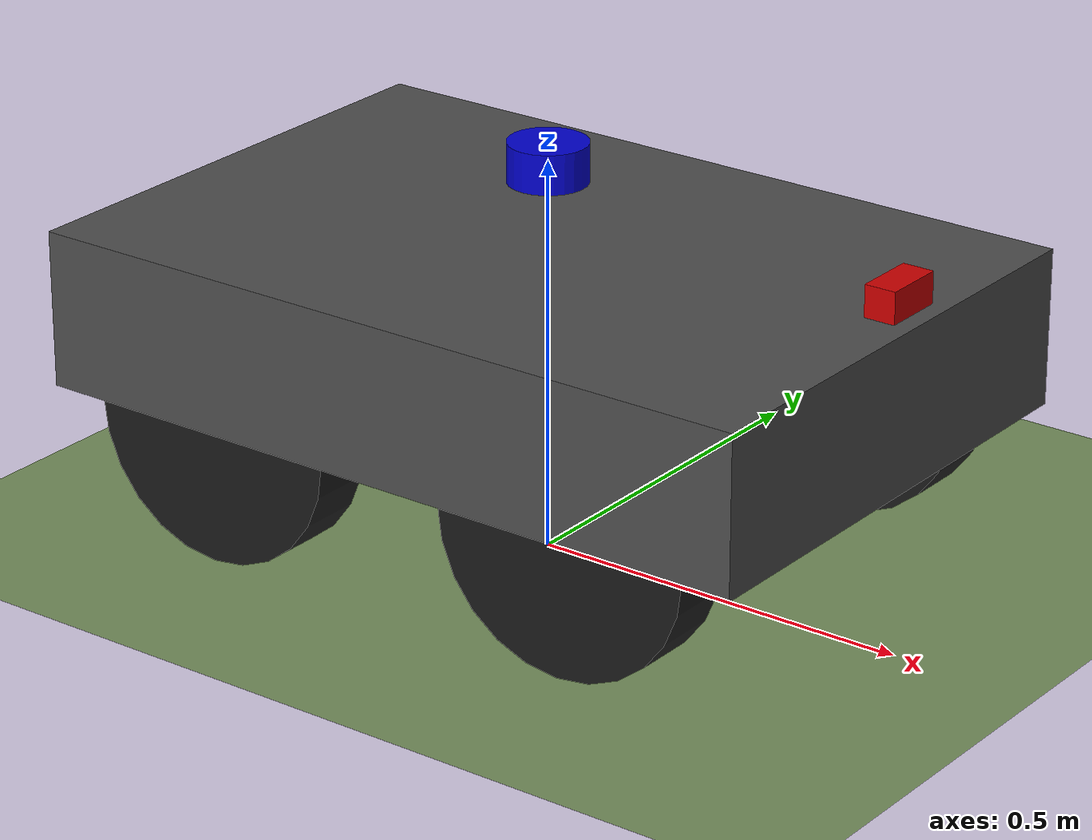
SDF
<?xml version="1.0"?>
<sdf version="1.9">
  <world name="phase1_region2_open">

    <!-- Physics engine — computes gravity, collisions, forces every timestep -->
    <plugin filename="gz-sim-physics-system"
            name="gz::sim::systems::Physics">
    </plugin>

    <!-- Lets you spawn/delete models from the GUI or command line -->
    <plugin filename="gz-sim-user-commands-system"
            name="gz::sim::systems::UserCommands">
    </plugin>

    <!-- Sends the 3D scene to the Gazebo GUI so you can see it -->
    <plugin filename="gz-sim-scene-broadcaster-system"
            name="gz::sim::systems::SceneBroadcaster">
    </plugin>

    <plugin filename="gz-sim-sensors-system"
            name="gz::sim::systems::Sensors">
      <render_engine>ogre2</render_engine>
    </plugin>

    <!--
      IMU system — required for IMU sensors to publish data.
      Separate from the Sensors plugin (which handles rendering sensors).
    -->
    <plugin filename="gz-sim-imu-system"
            name="gz::sim::systems::Imu">
    </plugin>

    <plugin filename="gz-sim-navsat-system"
            name="gz::sim::systems::NavSat">
    </plugin>

    <!-- Contact system — detects physical contacts between objects -->
    <plugin filename="gz-sim-contact-system"
            name="gz::sim::systems::Contact">
    </plugin>

    <!-- ══════════════════════════════════════════════════════════
         WORLD SETTINGS
         ══════════════════════════════════════════════════════════ -->

    <!-- Gravity: 9.8 m/s² downward (Earth standard) -->
    <gravity>0 0 -9.8</gravity>

    <!-- Magnetic field (for IMU magnetometer, approximate for Detroit MI) -->
    <magnetic_field>5.5645e-6 2.28758e-5 -4.23884e-5</magnetic_field>

    <spherical_coordinates>
      <surface_model>EARTH_WGS84</surface_model>
      <world_frame_orientation>ENU</world_frame_orientation>
      <latitude_deg>42.4129540624</latitude_deg>
      <longitude_deg>-83.1360653105</longitude_deg>
      <elevation>190.0</elevation>
      <heading_deg>0</heading_deg>
    </spherical_coordinates>

    <!-- Physics timestep: 1ms = 1000 Hz. Standard for ground robots. -->
    <physics name="1ms" type="ode">
      <max_step_size>0.001</max_step_size>
      <real_time_factor>1.0</real_time_factor>
      <dart>
        <collision_detector>bullet</collision_detector>
      </dart>
    </physics>

    <!-- ══════════════════════════════════════════════════════════
         SCENE — lighting and sky
         ══════════════════════════════════════════════════════════ -->
    <scene>
      <ambient>0.4 0.4 0.4 1</ambient>
      <background>0.7 0.85 1.0 1</background>  <!-- light blue sky -->
      <shadows>true</shadows>
    </scene>

    <!-- Sun: directional light from above-left, casts shadows -->
    <light type="directional" name="sun">
      <cast_shadows>true</cast_shadows>
      <pose>0 0 100 0 0 0</pose>
      <diffuse>0.9 0.9 0.9 1</diffuse>
      <specular>0.3 0.3 0.3 1</specular>
      <attenuation>
        <range>1000</range>
        <constant>0.9</constant>
        <linear>0.01</linear>
        <quadratic>0.001</quadratic>
      </attenuation>
      <direction>-0.5 0.1 -0.9</direction>
    </light>

    <model name="ground_plane">
      <static>true</static>
      <link name="link">
        <collision name="collision">
          <geometry>
            <plane>
              <normal>0 0 1</normal>  <!-- Z-up -->
              <size>200 200</size>
            </plane>
          </geometry>
          <surface>
            <friction>
              <ode><mu>1.0</mu><mu2>1.0</mu2></ode>
            </friction>
          </surface>
        </collision>

        <visual name="visual">
          <geometry>
            <plane>
              <normal>0 0 1</normal>
              <size>200 200</size>
            </plane>
          </geometry>
          <material>
            <ambient>0.45 0.55 0.35 1</ambient>
            <diffuse>0.45 0.55 0.35 1</diffuse>  <!-- olive green, like grass -->
          </material>
        </visual>
      </link>
    </model>

    <include>
      <uri>model://husky_leader</uri>
      <name>husky</name>
      <pose>0 0 0.3 0 0 0</pose>
    </include>

  </world>
</sdf>

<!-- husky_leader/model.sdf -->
<sdf version="1.9">
  <model name="husky_leader">

    <!--
      static = false means physics applies (gravity, collisions, forces).
      If true, the robot would float in place and ignore cmd_vel.
    -->
    <static>false</static>

    <link name="base_link">
      <inertial>
        <mass>50.0</mass>
        <inertia>
          <ixx>1.0417</ixx>
          <iyy>1.5042</iyy>
          <izz>2.1042</izz>
          <ixy>0</ixy>
          <ixz>0</ixz>
          <iyz>0</iyz>
        </inertia>
      </inertial>

      <!--
        Collision: the shape Gazebo uses to detect contacts.
        Simpler than visual — a box is fine for a rectangular robot.
      -->
      <collision name="chassis_collision">
        <geometry>
          <box><size>0.99 0.67 0.20</size></box>
        </geometry>
      </collision>

      <visual name="chassis_visual">
        <geometry>
          <box><size>0.99 0.67 0.20</size></box>
        </geometry>
        <material>
          <ambient>0.2 0.2 0.2 1</ambient>
          <diffuse>0.3 0.3 0.3 1</diffuse>  <!-- dark grey, like a real Husky -->
        </material>
      </visual>

      <sensor name="imu_sensor" type="imu">
        <always_on>true</always_on>
        <update_rate>100</update_rate>  <!-- 100 Hz, typical for IMU -->
        <topic>imu/data</topic>
        <imu>
          <angular_velocity>
            <x><noise type="gaussian"><mean>0</mean><stddev>0.001</stddev></noise></x>
            <y><noise type="gaussian"><mean>0</mean><stddev>0.001</stddev></noise></y>
            <z><noise type="gaussian"><mean>0</mean><stddev>0.001</stddev></noise></z>
          </angular_velocity>
          <linear_acceleration>
            <x><noise type="gaussian"><mean>0</mean><stddev>0.01</stddev></noise></x>
            <y><noise type="gaussian"><mean>0</mean><stddev>0.01</stddev></noise></y>
            <z><noise type="gaussian"><mean>0</mean><stddev>0.01</stddev></noise></z>
          </linear_acceleration>
        </imu>
      </sensor>

      <sensor name="navsat_sensor" type="navsat">
        <always_on>true</always_on>
        <update_rate>5</update_rate>  <!-- 5 Hz, typical for GPS modules -->
        <topic>navsat</topic>
        <navsat>
          <position_sensing>
            <horizontal>
              <!-- Noise here is applied directly to lat/lon (degrees), not meters.
                   0.5 m of real-world GPS error ≈ 0.5 / 111320 deg ≈ 0.0000045 deg. -->
              <noise type="gaussian"><mean>0</mean><stddev>0.0000045</stddev></noise>
            </horizontal>
            <vertical>
              <!-- Altitude stays in meters, so 1.0 m stddev is fine as-is. -->
              <noise type="gaussian"><mean>0</mean><stddev>1.0</stddev></noise>
            </vertical>
          </position_sensing>
        </navsat>
      </sensor>

    </link>

    <link name="lidar_link">
      <pose relative_to="base_link">0 0 0.20 0 0 0</pose>
      <!-- x y z  roll pitch yaw — 0.20m above chassis center -->

      <inertial>
        <mass>0.5</mass>
        <inertia>
          <ixx>0.001</ixx><iyy>0.001</iyy><izz>0.001</izz>
          <ixy>0</ixy><ixz>0</ixz><iyz>0</iyz>
        </inertia>
      </inertial>

      <collision name="lidar_collision">
        <geometry><cylinder><radius>0.05</radius><length>0.05</length></cylinder></geometry>
      </collision>

      <visual name="lidar_visual">
        <geometry><cylinder><radius>0.05</radius><length>0.05</length></cylinder></geometry>
        <material>
          <ambient>0.0 0.0 0.8 1</ambient>
          <diffuse>0.0 0.0 0.8 1</diffuse>  <!-- blue cylinder -->
        </material>
      </visual>

      <sensor name="lidar_sensor" type="gpu_lidar">
        <always_on>true</always_on>
        <update_rate>10</update_rate>  <!-- 10 Hz scan rate -->
        <topic>scan</topic>
        <lidar>
          <scan>
            <horizontal>
              <samples>360</samples>        <!-- one ray per degree -->
              <resolution>1</resolution>
              <min_angle>-3.14159</min_angle>
              <max_angle>3.14159</max_angle>
            </horizontal>
          </scan>
          <range>
            <min>0.15</min>   <!-- ignore anything closer than 15 cm -->
            <max>30.0</max>   <!-- 30 m max range -->
            <resolution>0.01</resolution>
          </range>
          <noise>
            <type>gaussian</type>
            <mean>0</mean>
            <stddev>0.01</stddev>
          </noise>
        </lidar>
      </sensor>

    </link>

    <!-- Fixed joint: bolt the lidar mount to the chassis -->
    <joint name="lidar_joint" type="fixed">
      <parent>base_link</parent>
      <child>lidar_link</child>
    </joint>

    <link name="camera_link">
      <!-- Mounted at front of chassis, looking forward -->
      <pose relative_to="base_link">0.49 0 0.15 0 0 0</pose>

      <inertial>
        <mass>0.2</mass>
        <inertia>
          <ixx>0.0001</ixx><iyy>0.0001</iyy><izz>0.0001</izz>
          <ixy>0</ixy><ixz>0</ixz><iyz>0</iyz>
        </inertia>
      </inertial>

      <collision name="camera_collision">
        <geometry><box><size>0.04 0.08 0.04</size></box></geometry>
      </collision>

      <visual name="camera_visual">
        <geometry><box><size>0.04 0.08 0.04</size></box></geometry>
        <material>
          <ambient>0.8 0.0 0.0 1</ambient>
          <diffuse>0.8 0.0 0.0 1</diffuse>  <!-- red box -->
        </material>
      </visual>

      <sensor name="camera_sensor" type="camera">
        <always_on>true</always_on>
        <update_rate>30</update_rate>
        <topic>camera/image</topic>
        <camera>
          <horizontal_fov>1.3962634</horizontal_fov>
          <image>
            <width>640</width>
            <height>480</height>
            <format>R8G8B8</format>
          </image>
          <clip>
            <near>0.1</near>
            <far>100.0</far>
          </clip>
          <noise>
            <type>gaussian</type>
            <mean>0</mean>
            <stddev>0.005</stddev>
          </noise>
        </camera>
      </sensor>

    </link>

    <joint name="camera_joint" type="fixed">
      <parent>base_link</parent>
      <child>camera_link</child>
    </joint>

    <!-- ── FRONT LEFT WHEEL ── -->
    <link name="front_left_wheel">
      <pose relative_to="base_link">0.256 0.2855 -0.1 -1.5708 0 0</pose>

      <inertial>
        <mass>2.5</mass>
        <inertia>
          <ixx>0.0073</ixx><iyy>0.0073</iyy><izz>0.0036</izz>
          <ixy>0</ixy><ixz>0</ixz><iyz>0</iyz>
        </inertia>
      </inertial>

      <collision name="collision">
        <geometry><cylinder><radius>0.17</radius><length>0.08</length></cylinder></geometry>
        <surface>
          <friction>
            <ode><mu>1.0</mu><mu2>0.5</mu2></ode>
          </friction>
          <contact>
            <ode><kp>1e6</kp><kd>500</kd></ode>
          </contact>
        </surface>
      </collision>

      <visual name="visual">
        <geometry><cylinder><radius>0.17</radius><length>0.08</length></cylinder></geometry>
        <material>
          <ambient>0.1 0.1 0.1 1</ambient>
          <diffuse>0.1 0.1 0.1 1</diffuse>  <!-- black wheels -->
        </material>
      </visual>
    </link>

    <joint name="front_left_wheel_joint" type="revolute">
      <parent>base_link</parent>
      <child>front_left_wheel</child>
      <axis>
        <xyz>0 0 1</xyz>  <!-- rotation axis: Z in wheel frame = Y in world (because of the roll) -->
        <limit><lower>-1e16</lower><upper>1e16</upper></limit>  <!-- unlimited rotation -->
      </axis>
    </joint>

    <!-- ── FRONT RIGHT WHEEL ── -->
    <link name="front_right_wheel">
      <pose relative_to="base_link">0.256 -0.2855 -0.1 -1.5708 0 0</pose>

      <inertial>
        <mass>2.5</mass>
        <inertia>
          <ixx>0.0073</ixx><iyy>0.0073</iyy><izz>0.0036</izz>
          <ixy>0</ixy><ixz>0</ixz><iyz>0</iyz>
        </inertia>
      </inertial>

      <collision name="collision">
        <geometry><cylinder><radius>0.17</radius><length>0.08</length></cylinder></geometry>
        <surface>
          <friction>
            <ode><mu>1.0</mu><mu2>0.5</mu2></ode>
          </friction>
          <contact>
            <ode><kp>1e6</kp><kd>500</kd></ode>
          </contact>
        </surface>
      </collision>

      <visual name="visual">
        <geometry><cylinder><radius>0.17</radius><length>0.08</length></cylinder></geometry>
        <material>
          <ambient>0.1 0.1 0.1 1</ambient>
          <diffuse>0.1 0.1 0.1 1</diffuse>
        </material>
      </visual>
    </link>

    <joint name="front_right_wheel_joint" type="revolute">
      <parent>base_link</parent>
      <child>front_right_wheel</child>
      <axis>
        <xyz>0 0 1</xyz>
        <limit><lower>-1e16</lower><upper>1e16</upper></limit>
      </axis>
    </joint>

    <!-- ── REAR LEFT WHEEL ── -->
    <link name="rear_left_wheel">
      <pose relative_to="base_link">-0.256 0.2855 -0.1 -1.5708 0 0</pose>

      <inertial>
        <mass>2.5</mass>
        <inertia>
          <ixx>0.0073</ixx><iyy>0.0073</iyy><izz>0.0036</izz>
          <ixy>0</ixy><ixz>0</ixz><iyz>0</iyz>
        </inertia>
      </inertial>

      <collision name="collision">
        <geometry><cylinder><radius>0.17</radius><length>0.08</length></cylinder></geometry>
        <surface>
          <friction>
            <ode><mu>1.0</mu><mu2>0.5</mu2></ode>
          </friction>
          <contact>
            <ode><kp>1e6</kp><kd>500</kd></ode>
          </contact>
        </surface>
      </collision>

      <visual name="visual">
        <geometry><cylinder><radius>0.17</radius><length>0.08</length></cylinder></geometry>
        <material>
          <ambient>0.1 0.1 0.1 1</ambient>
          <diffuse>0.1 0.1 0.1 1</diffuse>
        </material>
      </visual>
    </link>

    <joint name="rear_left_wheel_joint" type="revolute">
      <parent>base_link</parent>
      <child>rear_left_wheel</child>
      <axis>
        <xyz>0 0 1</xyz>
        <limit><lower>-1e16</lower><upper>1e16</upper></limit>
      </axis>
    </joint>

    <!-- ── REAR RIGHT WHEEL ── -->
    <link name="rear_right_wheel">
      <pose relative_to="base_link">-0.256 -0.2855 -0.1 -1.5708 0 0</pose>

      <inertial>
        <mass>2.5</mass>
        <inertia>
          <ixx>0.0073</ixx><iyy>0.0073</iyy><izz>0.0036</izz>
          <ixy>0</ixy><ixz>0</ixz><iyz>0</iyz>
        </inertia>
      </inertial>

      <collision name="collision">
        <geometry><cylinder><radius>0.17</radius><length>0.08</length></cylinder></geometry>
        <surface>
          <friction>
            <ode><mu>1.0</mu><mu2>0.5</mu2></ode>
          </friction>
          <contact>
            <ode><kp>1e6</kp><kd>500</kd></ode>
          </contact>
        </surface>
      </collision>

      <visual name="visual">
        <geometry><cylinder><radius>0.17</radius><length>0.08</length></cylinder></geometry>
        <material>
          <ambient>0.1 0.1 0.1 1</ambient>
          <diffuse>0.1 0.1 0.1 1</diffuse>
        </material>
      </visual>
    </link>

    <joint name="rear_right_wheel_joint" type="revolute">
      <parent>base_link</parent>
      <child>rear_right_wheel</child>
      <axis>
        <xyz>0 0 1</xyz>
        <limit><lower>-1e16</lower><upper>1e16</upper></limit>
      </axis>
    </joint>

    <plugin filename="gz-sim-diff-drive-system"
            name="gz::sim::systems::DiffDrive">
      <left_joint>front_left_wheel_joint</left_joint>
      <left_joint>rear_left_wheel_joint</left_joint>
      <right_joint>front_right_wheel_joint</right_joint>
      <right_joint>rear_right_wheel_joint</right_joint>
      <wheel_separation>0.571</wheel_separation>
      <wheel_radius>0.17</wheel_radius>
      <max_linear_acceleration>1.0</max_linear_acceleration>
      <max_angular_acceleration>2.0</max_angular_acceleration>
      <max_linear_velocity>2.0</max_linear_velocity>
      <min_linear_velocity>-2.0</min_linear_velocity>
      <max_angular_velocity>2.0</max_angular_velocity>
      <min_angular_velocity>-2.0</min_angular_velocity>
      <topic>cmd_vel</topic>
      <odom_topic>odom</odom_topic>
      <tf_topic>tf</tf_topic>
      <odom_publish_frequency>50</odom_publish_frequency>
    </plugin>

    <!--
      JointStatePublisher: publishes joint positions + velocities.
      Needed by robot_state_publisher to know wheel angles for TF.
    -->
    <plugin filename="gz-sim-joint-state-publisher-system"
            name="gz::sim::systems::JointStatePublisher">
      <topic>joint_states</topic>
    </plugin>

  </model>
</sdf>
